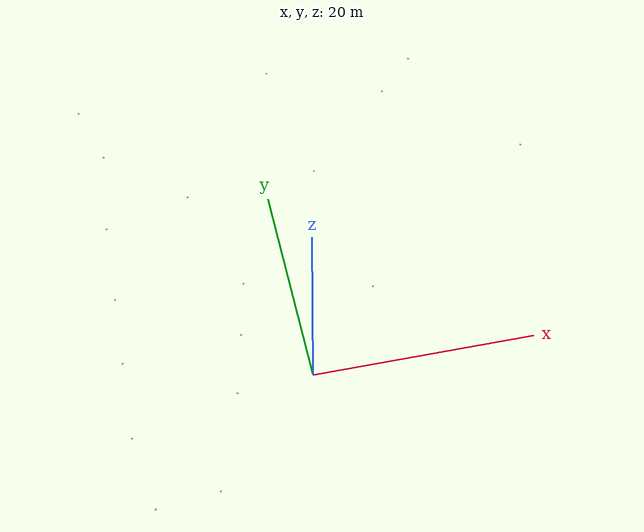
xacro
<?xml version='1.0'?>
<robot name="road" xmlns:xacro="http://www.ros.org/wiki/xacro">
   <xacro:property name="predio_scale" value="9" />
   <xacro:property name="predio_qrcodes_mesh_path" value="package://inventacao_car_test/meshes/InventacaoPredioRoadQrCodes/InventacaoPredioRoadQrCodes.dae" />
   <xacro:property name="x" value="-30.756142" />
   <xacro:property name="y" value="-11.228691" />
   <xacro:property name="z" value="0.05" />

  	<link name="base_link">
		<visual>
        <origin xyz="${x} ${y} ${z}" rpy="0 0 0" />
      <geometry>
        <mesh filename="${predio_qrcodes_mesh_path}" scale="${predio_scale} ${predio_scale} ${predio_scale}"/>
      </geometry>
    </visual>

    <!-- Required to maintain the 3d model above the ground (when dynamic model) -->
    <collision>
        <origin xyz="${x} ${y} ${z}" rpy="0 0 0"/>
        <geometry>
          <mesh filename="${predio_qrcodes_mesh_path}" scale="${predio_scale} ${predio_scale} ${predio_scale}"/>
        </geometry>
      </collision>

    <!-- 3d model won't show up without inertial set-->
    <inertial>
        <origin xyz="0 0 0" rpy="0 0 0" />
        <inertia ixx="1.0" ixy="0" ixz="0"
                 iyy="1.0" iyz="0"
                 izz="1.0" />
        <mass value="100" />
      </inertial>
	</link>

  <!-- Set model as kinematic -->
  <gazebo>
      <static>true</static>
  </gazebo>

</robot>
